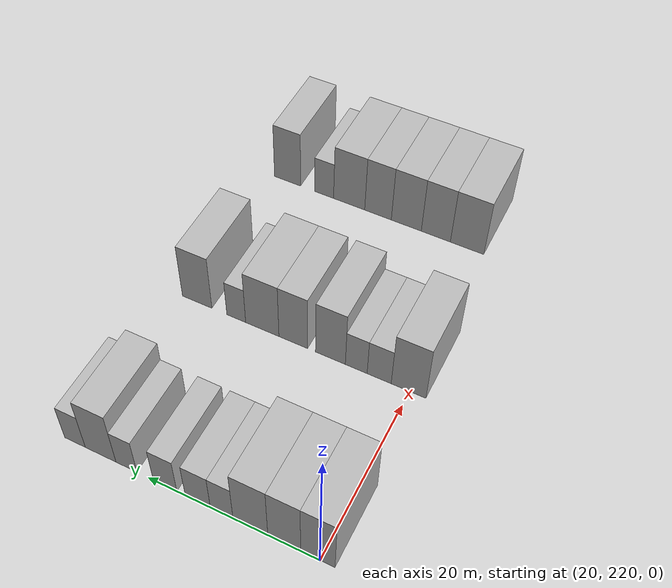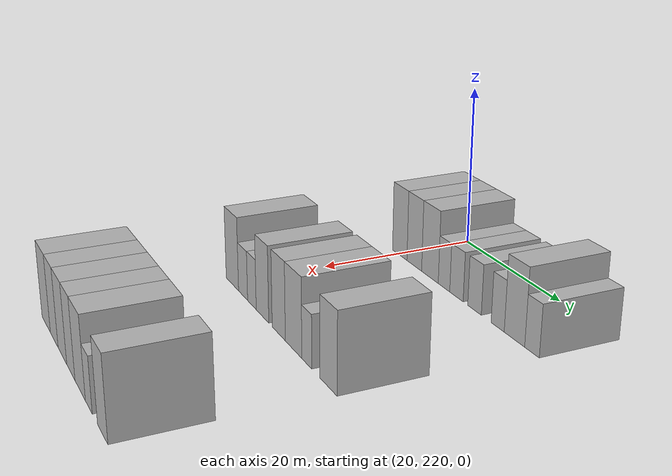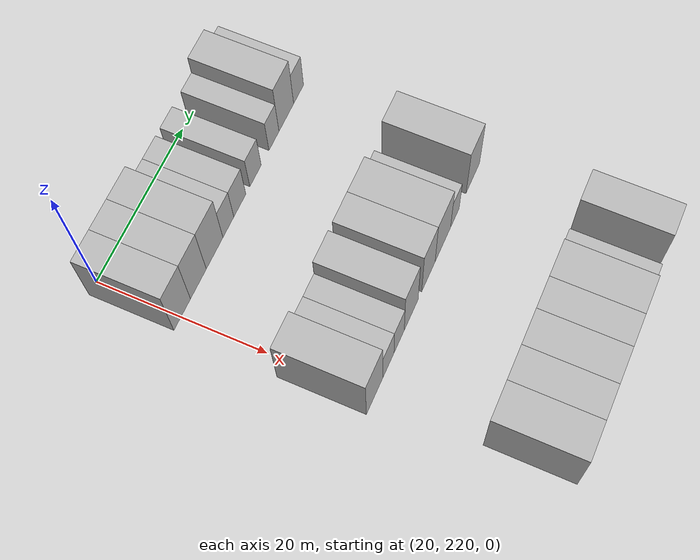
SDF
<sdf version="1.6">
 <world name="default">
  <model name="building_121">
   <static>1</static>
   <pose>25.0000 220.3004 0 0.000000 0.000000 0.000000</pose>
   <link name="link">
    <pose>0 0 4.50 0 0 0</pose>
    <collision name="collision"><geometry><box><size>10.0000 3.8117 9.0000</size></box></geometry></collision>
    <visual name="visual">
     <cast_shadows>0</cast_shadows>
     <geometry><box><size>10.0000 3.8117 9.0000</size></box></geometry>
     <material>
      <script>
       <uri>model://HANNAS_wall/materials/scripts</uri>
       <uri>model://HANNAS_wall/materials/textures</uri>
       <name>vrc/HANNAS_wall</name>
      </script>
     </material>
    </visual>
   </link>
  </model>
  <model name="building_122">
   <static>1</static>
   <pose>25.0000 224.0558 0 0.000000 0.000000 0.000000</pose>
   <link name="link">
    <pose>0 0 4.50 0 0 0</pose>
    <collision name="collision"><geometry><box><size>10.0000 3.6991 9.0000</size></box></geometry></collision>
    <visual name="visual">
     <cast_shadows>0</cast_shadows>
     <geometry><box><size>10.0000 3.6991 9.0000</size></box></geometry>
     <material>
      <script>
       <uri>model://HANNAS_wall/materials/scripts</uri>
       <uri>model://HANNAS_wall/materials/textures</uri>
       <name>vrc/HANNAS_wall</name>
      </script>
     </material>
    </visual>
   </link>
  </model>
  <model name="building_123">
   <static>1</static>
   <pose>25.0000 227.9066 0 0.000000 0.000000 0.000000</pose>
   <link name="link">
    <pose>0 0 4.50 0 0 0</pose>
    <collision name="collision"><geometry><box><size>10.0000 4.0026 9.0000</size></box></geometry></collision>
    <visual name="visual">
     <cast_shadows>0</cast_shadows>
     <geometry><box><size>10.0000 4.0026 9.0000</size></box></geometry>
     <material>
      <script>
       <uri>model://HANNAS_wall/materials/scripts</uri>
       <uri>model://HANNAS_wall/materials/textures</uri>
       <name>vrc/HANNAS_wall</name>
      </script>
     </material>
    </visual>
   </link>
  </model>
  <model name="building_124">
   <static>1</static>
   <pose>25.0000 231.2345 0 0.000000 0.000000 0.000000</pose>
   <link name="link">
    <pose>0 0 3.00 0 0 0</pose>
    <collision name="collision"><geometry><box><size>10.0000 2.6533 6.0000</size></box></geometry></collision>
    <visual name="visual">
     <cast_shadows>0</cast_shadows>
     <geometry><box><size>10.0000 2.6533 6.0000</size></box></geometry>
     <material>
      <script>
       <uri>model://HANNAS_wall/materials/scripts</uri>
       <uri>model://HANNAS_wall/materials/textures</uri>
       <name>vrc/HANNAS_wall</name>
      </script>
     </material>
    </visual>
   </link>
  </model>
  <model name="building_125">
   <static>1</static>
   <pose>25.0000 234.0508 0 0.000000 0.000000 0.000000</pose>
   <link name="link">
    <pose>0 0 3.00 0 0 0</pose>
    <collision name="collision"><geometry><box><size>10.0000 2.9793 6.0000</size></box></geometry></collision>
    <visual name="visual">
     <cast_shadows>0</cast_shadows>
     <geometry><box><size>10.0000 2.9793 6.0000</size></box></geometry>
     <material>
      <script>
       <uri>model://HANNAS_wall/materials/scripts</uri>
       <uri>model://HANNAS_wall/materials/textures</uri>
       <name>vrc/HANNAS_wall</name>
      </script>
     </material>
    </visual>
   </link>
  </model>
  <model name="building_126">
   <static>1</static>
   <pose>25.0000 237.9720 0 0.000000 0.000000 0.000000</pose>
   <link name="link">
    <pose>0 0 3.00 0 0 0</pose>
    <collision name="collision"><geometry><box><size>10.0000 2.8631 6.0000</size></box></geometry></collision>
    <visual name="visual">
     <cast_shadows>0</cast_shadows>
     <geometry><box><size>10.0000 2.8631 6.0000</size></box></geometry>
     <material>
      <script>
       <uri>model://HANNAS_wall/materials/scripts</uri>
       <uri>model://HANNAS_wall/materials/textures</uri>
       <name>vrc/HANNAS_wall</name>
      </script>
     </material>
    </visual>
   </link>
  </model>
  <model name="building_127">
   <static>1</static>
   <pose>25.0000 242.7016 0 0.000000 0.000000 0.000000</pose>
   <link name="link">
    <pose>0 0 3.00 0 0 0</pose>
    <collision name="collision"><geometry><box><size>10.0000 2.5960 6.0000</size></box></geometry></collision>
    <visual name="visual">
     <cast_shadows>0</cast_shadows>
     <geometry><box><size>10.0000 2.5960 6.0000</size></box></geometry>
     <material>
      <script>
       <uri>model://HANNAS_wall/materials/scripts</uri>
       <uri>model://HANNAS_wall/materials/textures</uri>
       <name>vrc/HANNAS_wall</name>
      </script>
     </material>
    </visual>
   </link>
  </model>
  <model name="building_128">
   <static>1</static>
   <pose>25.0000 245.9337 0 0.000000 0.000000 0.000000</pose>
   <link name="link">
    <pose>0 0 4.50 0 0 0</pose>
    <collision name="collision"><geometry><box><size>10.0000 3.8683 9.0000</size></box></geometry></collision>
    <visual name="visual">
     <cast_shadows>0</cast_shadows>
     <geometry><box><size>10.0000 3.8683 9.0000</size></box></geometry>
     <material>
      <script>
       <uri>model://HANNAS_wall/materials/scripts</uri>
       <uri>model://HANNAS_wall/materials/textures</uri>
       <name>vrc/HANNAS_wall</name>
      </script>
     </material>
    </visual>
   </link>
  </model>
  <model name="building_129">
   <static>1</static>
   <pose>25.0000 249.1870 0 0.000000 0.000000 0.000000</pose>
   <link name="link">
    <pose>0 0 3.00 0 0 0</pose>
    <collision name="collision"><geometry><box><size>10.0000 2.6382 6.0000</size></box></geometry></collision>
    <visual name="visual">
     <cast_shadows>0</cast_shadows>
     <geometry><box><size>10.0000 2.6382 6.0000</size></box></geometry>
     <material>
      <script>
       <uri>model://HANNAS_wall/materials/scripts</uri>
       <uri>model://HANNAS_wall/materials/textures</uri>
       <name>vrc/HANNAS_wall</name>
      </script>
     </material>
    </visual>
   </link>
  </model>
  <model name="building_243">
   <static>1</static>
   <pose>47.0000 220.1700 0 0.000000 0.000000 0.000000</pose>
   <link name="link">
    <pose>0 0 4.50 0 0 0</pose>
    <collision name="collision"><geometry><box><size>10.0000 4.1727 9.0000</size></box></geometry></collision>
    <visual name="visual">
     <cast_shadows>0</cast_shadows>
     <geometry><box><size>10.0000 4.1727 9.0000</size></box></geometry>
     <material>
      <script>
       <uri>model://HANNAS_wall/materials/scripts</uri>
       <uri>model://HANNAS_wall/materials/textures</uri>
       <name>vrc/HANNAS_wall</name>
      </script>
     </material>
    </visual>
   </link>
  </model>
  <model name="building_244">
   <static>1</static>
   <pose>47.0000 223.7242 0 0.000000 0.000000 0.000000</pose>
   <link name="link">
    <pose>0 0 3.00 0 0 0</pose>
    <collision name="collision"><geometry><box><size>10.0000 2.9358 6.0000</size></box></geometry></collision>
    <visual name="visual">
     <cast_shadows>0</cast_shadows>
     <geometry><box><size>10.0000 2.9358 6.0000</size></box></geometry>
     <material>
      <script>
       <uri>model://HANNAS_wall/materials/scripts</uri>
       <uri>model://HANNAS_wall/materials/textures</uri>
       <name>vrc/HANNAS_wall</name>
      </script>
     </material>
    </visual>
   </link>
  </model>
  <model name="building_245">
   <static>1</static>
   <pose>47.0000 226.5375 0 0.000000 0.000000 0.000000</pose>
   <link name="link">
    <pose>0 0 3.00 0 0 0</pose>
    <collision name="collision"><geometry><box><size>10.0000 2.6907 6.0000</size></box></geometry></collision>
    <visual name="visual">
     <cast_shadows>0</cast_shadows>
     <geometry><box><size>10.0000 2.6907 6.0000</size></box></geometry>
     <material>
      <script>
       <uri>model://HANNAS_wall/materials/scripts</uri>
       <uri>model://HANNAS_wall/materials/textures</uri>
       <name>vrc/HANNAS_wall</name>
      </script>
     </material>
    </visual>
   </link>
  </model>
  <model name="building_246">
   <static>1</static>
   <pose>47.0000 229.7538 0 0.000000 0.000000 0.000000</pose>
   <link name="link">
    <pose>0 0 4.50 0 0 0</pose>
    <collision name="collision"><geometry><box><size>10.0000 3.7419 9.0000</size></box></geometry></collision>
    <visual name="visual">
     <cast_shadows>0</cast_shadows>
     <geometry><box><size>10.0000 3.7419 9.0000</size></box></geometry>
     <material>
      <script>
       <uri>model://HANNAS_wall/materials/scripts</uri>
       <uri>model://HANNAS_wall/materials/textures</uri>
       <name>vrc/HANNAS_wall</name>
      </script>
     </material>
    </visual>
   </link>
  </model>
  <model name="building_247">
   <static>1</static>
   <pose>47.0000 234.4644 0 0.000000 0.000000 0.000000</pose>
   <link name="link">
    <pose>0 0 4.50 0 0 0</pose>
    <collision name="collision"><geometry><box><size>10.0000 3.6793 9.0000</size></box></geometry></collision>
    <visual name="visual">
     <cast_shadows>0</cast_shadows>
     <geometry><box><size>10.0000 3.6793 9.0000</size></box></geometry>
     <material>
      <script>
       <uri>model://HANNAS_wall/materials/scripts</uri>
       <uri>model://HANNAS_wall/materials/textures</uri>
       <name>vrc/HANNAS_wall</name>
      </script>
     </material>
    </visual>
   </link>
  </model>
  <model name="building_248">
   <static>1</static>
   <pose>47.0000 238.4772 0 0.000000 0.000000 0.000000</pose>
   <link name="link">
    <pose>0 0 4.50 0 0 0</pose>
    <collision name="collision"><geometry><box><size>10.0000 4.3463 9.0000</size></box></geometry></collision>
    <visual name="visual">
     <cast_shadows>0</cast_shadows>
     <geometry><box><size>10.0000 4.3463 9.0000</size></box></geometry>
     <material>
      <script>
       <uri>model://HANNAS_wall/materials/scripts</uri>
       <uri>model://HANNAS_wall/materials/textures</uri>
       <name>vrc/HANNAS_wall</name>
      </script>
     </material>
    </visual>
   </link>
  </model>
  <model name="building_249">
   <static>1</static>
   <pose>47.0000 241.8988 0 0.000000 0.000000 0.000000</pose>
   <link name="link">
    <pose>0 0 3.00 0 0 0</pose>
    <collision name="collision"><geometry><box><size>10.0000 2.4970 6.0000</size></box></geometry></collision>
    <visual name="visual">
     <cast_shadows>0</cast_shadows>
     <geometry><box><size>10.0000 2.4970 6.0000</size></box></geometry>
     <material>
      <script>
       <uri>model://HANNAS_wall/materials/scripts</uri>
       <uri>model://HANNAS_wall/materials/textures</uri>
       <name>vrc/HANNAS_wall</name>
      </script>
     </material>
    </visual>
   </link>
  </model>
  <model name="building_250">
   <static>1</static>
   <pose>47.0000 247.1451 0 0.000000 0.000000 0.000000</pose>
   <link name="link">
    <pose>0 0 4.50 0 0 0</pose>
    <collision name="collision"><geometry><box><size>10.0000 3.9956 9.0000</size></box></geometry></collision>
    <visual name="visual">
     <cast_shadows>0</cast_shadows>
     <geometry><box><size>10.0000 3.9956 9.0000</size></box></geometry>
     <material>
      <script>
       <uri>model://HANNAS_wall/materials/scripts</uri>
       <uri>model://HANNAS_wall/materials/textures</uri>
       <name>vrc/HANNAS_wall</name>
      </script>
     </material>
    </visual>
   </link>
  </model>
  <model name="building_368">
   <static>1</static>
   <pose>69.0000 222.0311 0 0.000000 0.000000 0.000000</pose>
   <link name="link">
    <pose>0 0 4.50 0 0 0</pose>
    <collision name="collision"><geometry><box><size>10.0000 4.3724 9.0000</size></box></geometry></collision>
    <visual name="visual">
     <cast_shadows>0</cast_shadows>
     <geometry><box><size>10.0000 4.3724 9.0000</size></box></geometry>
     <material>
      <script>
       <uri>model://HANNAS_wall/materials/scripts</uri>
       <uri>model://HANNAS_wall/materials/textures</uri>
       <name>vrc/HANNAS_wall</name>
      </script>
     </material>
    </visual>
   </link>
  </model>
  <model name="building_369">
   <static>1</static>
   <pose>69.0000 226.1497 0 0.000000 0.000000 0.000000</pose>
   <link name="link">
    <pose>0 0 4.50 0 0 0</pose>
    <collision name="collision"><geometry><box><size>10.0000 3.8647 9.0000</size></box></geometry></collision>
    <visual name="visual">
     <cast_shadows>0</cast_shadows>
     <geometry><box><size>10.0000 3.8647 9.0000</size></box></geometry>
     <material>
      <script>
       <uri>model://HANNAS_wall/materials/scripts</uri>
       <uri>model://HANNAS_wall/materials/textures</uri>
       <name>vrc/HANNAS_wall</name>
      </script>
     </material>
    </visual>
   </link>
  </model>
  <model name="building_370">
   <static>1</static>
   <pose>69.0000 230.1087 0 0.000000 0.000000 0.000000</pose>
   <link name="link">
    <pose>0 0 4.50 0 0 0</pose>
    <collision name="collision"><geometry><box><size>10.0000 4.0533 9.0000</size></box></geometry></collision>
    <visual name="visual">
     <cast_shadows>0</cast_shadows>
     <geometry><box><size>10.0000 4.0533 9.0000</size></box></geometry>
     <material>
      <script>
       <uri>model://HANNAS_wall/materials/scripts</uri>
       <uri>model://HANNAS_wall/materials/textures</uri>
       <name>vrc/HANNAS_wall</name>
      </script>
     </material>
    </visual>
   </link>
  </model>
  <model name="building_371">
   <static>1</static>
   <pose>69.0000 233.9649 0 0.000000 0.000000 0.000000</pose>
   <link name="link">
    <pose>0 0 4.50 0 0 0</pose>
    <collision name="collision"><geometry><box><size>10.0000 3.6592 9.0000</size></box></geometry></collision>
    <visual name="visual">
     <cast_shadows>0</cast_shadows>
     <geometry><box><size>10.0000 3.6592 9.0000</size></box></geometry>
     <material>
      <script>
       <uri>model://HANNAS_wall/materials/scripts</uri>
       <uri>model://HANNAS_wall/materials/textures</uri>
       <name>vrc/HANNAS_wall</name>
      </script>
     </material>
    </visual>
   </link>
  </model>
  <model name="building_372">
   <static>1</static>
   <pose>69.0000 237.9689 0 0.000000 0.000000 0.000000</pose>
   <link name="link">
    <pose>0 0 4.50 0 0 0</pose>
    <collision name="collision"><geometry><box><size>10.0000 4.3487 9.0000</size></box></geometry></collision>
    <visual name="visual">
     <cast_shadows>0</cast_shadows>
     <geometry><box><size>10.0000 4.3487 9.0000</size></box></geometry>
     <material>
      <script>
       <uri>model://HANNAS_wall/materials/scripts</uri>
       <uri>model://HANNAS_wall/materials/textures</uri>
       <name>vrc/HANNAS_wall</name>
      </script>
     </material>
    </visual>
   </link>
  </model>
  <model name="building_373">
   <static>1</static>
   <pose>69.0000 241.4899 0 0.000000 0.000000 0.000000</pose>
   <link name="link">
    <pose>0 0 3.00 0 0 0</pose>
    <collision name="collision"><geometry><box><size>10.0000 2.6933 6.0000</size></box></geometry></collision>
    <visual name="visual">
     <cast_shadows>0</cast_shadows>
     <geometry><box><size>10.0000 2.6933 6.0000</size></box></geometry>
     <material>
      <script>
       <uri>model://HANNAS_wall/materials/scripts</uri>
       <uri>model://HANNAS_wall/materials/textures</uri>
       <name>vrc/HANNAS_wall</name>
      </script>
     </material>
    </visual>
   </link>
  </model>
  <model name="building_374">
   <static>1</static>
   <pose>69.0000 246.7201 0 0.000000 0.000000 0.000000</pose>
   <link name="link">
    <pose>0 0 4.50 0 0 0</pose>
    <collision name="collision"><geometry><box><size>10.0000 3.7670 9.0000</size></box></geometry></collision>
    <visual name="visual">
     <cast_shadows>0</cast_shadows>
     <geometry><box><size>10.0000 3.7670 9.0000</size></box></geometry>
     <material>
      <script>
       <uri>model://HANNAS_wall/materials/scripts</uri>
       <uri>model://HANNAS_wall/materials/textures</uri>
       <name>vrc/HANNAS_wall</name>
      </script>
     </material>
    </visual>
   </link>
  </model>
 </world>
</sdf>
